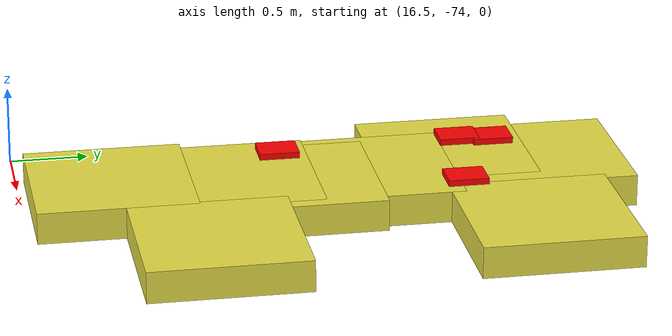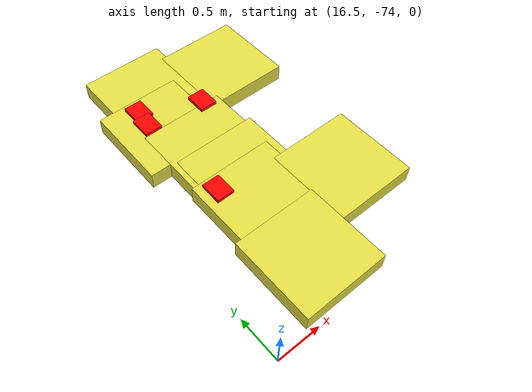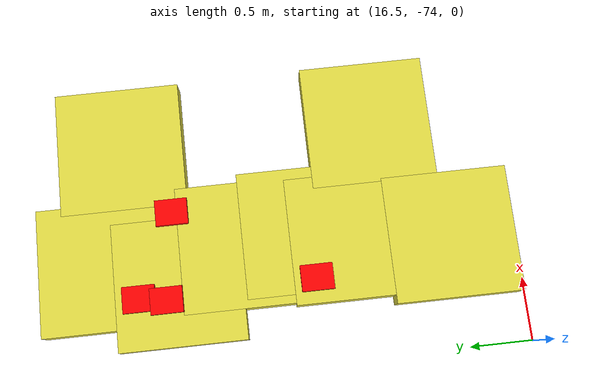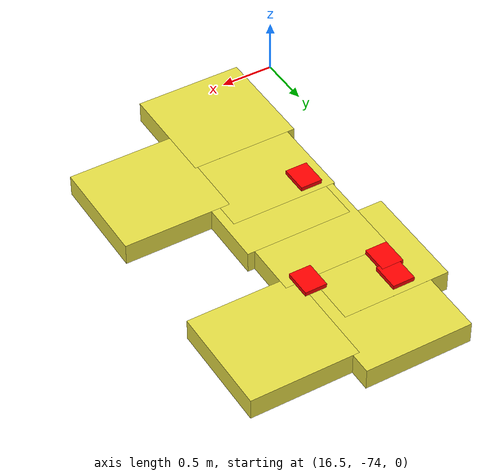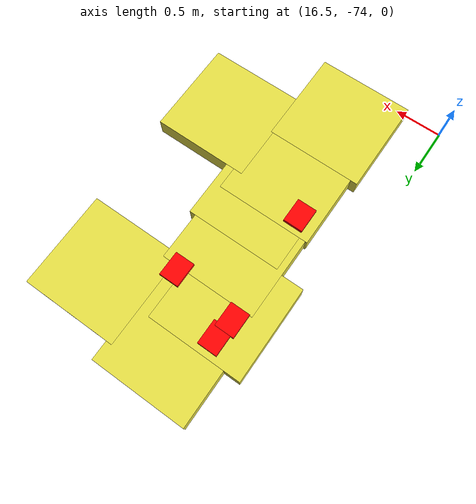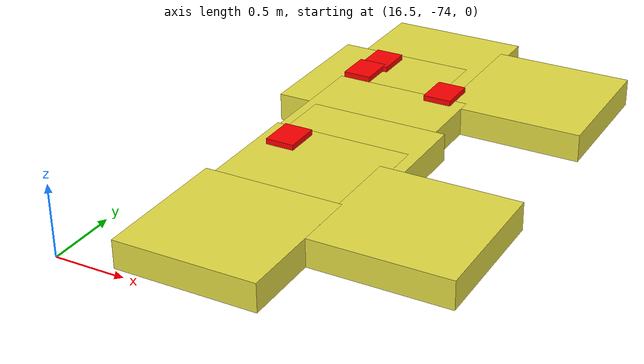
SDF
<sdf version="1.4">
 <world name="default">
  <include><uri>model://sun</uri></include>
  <model name="fire_box_2_clone_7">
   <link name="link">
    <inertial>
     <mass>1</mass>
     <inertia>
      <ixx>0.166667</ixx>
      <ixy>0</ixy>
      <ixz>0</ixz>
      <iyy>0.166667</iyy>
      <iyz>0</iyz>
      <izz>0.166667</izz>
     </inertia>
    </inertial>
    <visual name="visual">
     <geometry><box><size>1 1 0.2</size></box></geometry>
     <material>
      <script><name>Gazebo/Grey</name><uri>file://media/materials/scripts/gazebo.material</uri></script>
      <ambient>0.9 0.87 0.27 1</ambient>
      <diffuse>0.9 0.87 0.27 1</diffuse>
      <specular>0.01 0.01 0.01 1</specular>
      <emissive>0 0 0 1</emissive>
      <shader type="vertex"><normal_map>__default__</normal_map></shader>
      <lighting>1</lighting>
     </material>
    </visual>
   </link>
   <static>1</static>
   <pose>17.5456 -72.2979 0.103208 2e-05 -0 5.1e-05</pose>
  </model>
  <model name="fire_box_2_clone_8">
   <link name="link">
    <inertial>
     <mass>1</mass>
     <inertia>
      <ixx>0.166667</ixx>
      <ixy>0</ixy>
      <ixz>0</ixz>
      <iyy>0.166667</iyy>
      <iyz>0</iyz>
      <izz>0.166667</izz>
     </inertia>
    </inertial>
    <visual name="visual">
     <geometry><box><size>1 1 0.2</size></box></geometry>
     <material>
      <script><name>Gazebo/Grey</name><uri>file://media/materials/scripts/gazebo.material</uri></script>
      <ambient>0.9 0.87 0.27 1</ambient>
      <diffuse>0.9 0.87 0.27 1</diffuse>
      <specular>0.01 0.01 0.01 1</specular>
      <emissive>0 0 0 1</emissive>
      <shader type="vertex"><normal_map>__default__</normal_map></shader>
      <lighting>1</lighting>
     </material>
    </visual>
   </link>
   <static>1</static>
   <pose>18.3683 -72.9005 0.103208 2e-05 -0 5.1e-05</pose>
  </model>
  <model name="fire_box_2_clone_9">
   <link name="link">
    <inertial>
     <mass>1</mass>
     <inertia>
      <ixx>0.166667</ixx>
      <ixy>0</ixy>
      <ixz>0</ixz>
      <iyy>0.166667</iyy>
      <iyz>0</iyz>
      <izz>0.166667</izz>
     </inertia>
    </inertial>
    <visual name="visual">
     <geometry><box><size>1 1 0.2</size></box></geometry>
     <material>
      <script><name>Gazebo/Grey</name><uri>file://media/materials/scripts/gazebo.material</uri></script>
      <ambient>0.9 0.87 0.27 1</ambient>
      <diffuse>0.9 0.87 0.27 1</diffuse>
      <specular>0.01 0.01 0.01 1</specular>
      <emissive>0 0 0 1</emissive>
      <shader type="vertex"><normal_map>__default__</normal_map></shader>
      <lighting>1</lighting>
     </material>
    </visual>
   </link>
   <static>1</static>
   <pose>17.3911 -73.4467 0.103208 2e-05 -0 5.1e-05</pose>
  </model>
  <model name="fire_box_2_clone_13">
   <link name="link">
    <inertial>
     <mass>1</mass>
     <inertia>
      <ixx>0.166667</ixx>
      <ixy>0</ixy>
      <ixz>0</ixz>
      <iyy>0.166667</iyy>
      <iyz>0</iyz>
      <izz>0.166667</izz>
     </inertia>
    </inertial>
    <visual name="visual">
     <geometry><box><size>1 1 0.2</size></box></geometry>
     <material>
      <script><name>Gazebo/Grey</name><uri>file://media/materials/scripts/gazebo.material</uri></script>
      <ambient>0.9 0.87 0.27 1</ambient>
      <diffuse>0.9 0.87 0.27 1</diffuse>
      <specular>0.01 0.01 0.01 1</specular>
      <emissive>0 0 0 1</emissive>
      <shader type="vertex"><normal_map>__default__</normal_map></shader>
      <lighting>1</lighting>
     </material>
    </visual>
   </link>
   <static>1</static>
   <pose>17.4603 -72.6708 0.103208 2e-05 -0 5.1e-05</pose>
  </model>
  <model name="fire_box_2_clone_14">
   <link name="link">
    <inertial>
     <mass>1</mass>
     <inertia>
      <ixx>0.166667</ixx>
      <ixy>0</ixy>
      <ixz>0</ixz>
      <iyy>0.166667</iyy>
      <iyz>0</iyz>
      <izz>0.166667</izz>
     </inertia>
    </inertial>
    <visual name="visual">
     <geometry><box><size>1 1 0.2</size></box></geometry>
     <material>
      <script><name>Gazebo/Grey</name><uri>file://media/materials/scripts/gazebo.material</uri></script>
      <ambient>0.9 0.87 0.27 1</ambient>
      <diffuse>0.9 0.87 0.27 1</diffuse>
      <specular>0.01 0.01 0.01 1</specular>
      <emissive>0 0 0 1</emissive>
      <shader type="vertex"><normal_map>__default__</normal_map></shader>
      <lighting>1</lighting>
     </material>
    </visual>
   </link>
   <static>1</static>
   <pose>17.2442 -71.2753 0.103208 2e-05 -0 5.1e-05</pose>
  </model>
  <model name="fire_box_2_clone_17">
   <link name="link">
    <inertial>
     <mass>1</mass>
     <inertia>
      <ixx>0.166667</ixx>
      <ixy>0</ixy>
      <ixz>0</ixz>
      <iyy>0.166667</iyy>
      <iyz>0</iyz>
      <izz>0.166667</izz>
     </inertia>
    </inertial>
    <visual name="visual">
     <geometry><box><size>1 1 0.2</size></box></geometry>
     <material>
      <script><name>Gazebo/Grey</name><uri>file://media/materials/scripts/gazebo.material</uri></script>
      <ambient>0.9 0.87 0.27 1</ambient>
      <diffuse>0.9 0.87 0.27 1</diffuse>
      <specular>0.01 0.01 0.01 1</specular>
      <emissive>0 0 0 1</emissive>
      <shader type="vertex"><normal_map>__default__</normal_map></shader>
      <lighting>1</lighting>
     </material>
    </visual>
   </link>
   <static>1</static>
   <pose>17.4797 -71.8 0.103208 2e-05 -0 5.1e-05</pose>
  </model>
  <model name="fire_box_2_clone_18">
   <link name="link">
    <inertial>
     <mass>1</mass>
     <inertia>
      <ixx>0.166667</ixx>
      <ixy>0</ixy>
      <ixz>0</ixz>
      <iyy>0.166667</iyy>
      <iyz>0</iyz>
      <izz>0.166667</izz>
     </inertia>
    </inertial>
    <visual name="visual">
     <geometry><box><size>1 1 0.2</size></box></geometry>
     <material>
      <script><name>Gazebo/Grey</name><uri>file://media/materials/scripts/gazebo.material</uri></script>
      <ambient>0.9 0.87 0.27 1</ambient>
      <diffuse>0.9 0.87 0.27 1</diffuse>
      <specular>0.01 0.01 0.01 1</specular>
      <emissive>0 0 0 1</emissive>
      <shader type="vertex"><normal_map>__default__</normal_map></shader>
      <lighting>1</lighting>
     </material>
    </visual>
   </link>
   <static>1</static>
   <pose>17.4152 -70.6947 0.103208 2e-05 -0 5.1e-05</pose>
  </model>
  <model name="fire_box_2_clone_20">
   <link name="link">
    <inertial>
     <mass>1</mass>
     <inertia>
      <ixx>0.166667</ixx>
      <ixy>0</ixy>
      <ixz>0</ixz>
      <iyy>0.166667</iyy>
      <iyz>0</iyz>
      <izz>0.166667</izz>
     </inertia>
    </inertial>
    <visual name="visual">
     <geometry><box><size>1 1 0.2</size></box></geometry>
     <material>
      <script><name>Gazebo/Grey</name><uri>file://media/materials/scripts/gazebo.material</uri></script>
      <ambient>0.9 0.87 0.27 1</ambient>
      <diffuse>0.9 0.87 0.27 1</diffuse>
      <specular>0.01 0.01 0.01 1</specular>
      <emissive>0 0 0 1</emissive>
      <shader type="vertex"><normal_map>__default__</normal_map></shader>
      <lighting>1</lighting>
     </material>
    </visual>
   </link>
   <static>1</static>
   <pose>18.3543 -70.8926 0.103208 2e-05 -0 5.1e-05</pose>
  </model>
  <model name="fire_box_clone_10_clone_clone">
   <link name="link">
    <inertial>
     <mass>1</mass>
     <inertia>
      <ixx>0.166667</ixx>
      <ixy>0</ixy>
      <ixz>0</ixz>
      <iyy>0.166667</iyy>
      <iyz>0</iyz>
      <izz>0.166667</izz>
     </inertia>
    </inertial>
    <visual name="visual">
     <geometry><box><size>0.205115 0.254942 0.2</size></box></geometry>
     <material>
      <script><name>Gazebo/Grey</name><uri>file://media/materials/scripts/gazebo.material</uri></script>
      <ambient>1 0 0 1</ambient>
      <diffuse>1 0 0 1</diffuse>
      <specular>0.01 0.01 0.01 1</specular>
      <emissive>0 0 0 1</emissive>
      <shader type="vertex"><normal_map>__default__</normal_map></shader>
      <lighting>1</lighting>
     </material>
    </visual>
   </link>
   <static>1</static>
   <pose>17.7918 -71.2662 0.142519 2e-05 -0 5.1e-05</pose>
  </model>
  <model name="fire_box_clone_10_clone_clone_1">
   <link name="link">
    <inertial>
     <mass>1</mass>
     <inertia>
      <ixx>0.166667</ixx>
      <ixy>0</ixy>
      <ixz>0</ixz>
      <iyy>0.166667</iyy>
      <iyz>0</iyz>
      <izz>0.166667</izz>
     </inertia>
    </inertial>
    <visual name="visual">
     <geometry><box><size>0.205115 0.254942 0.2</size></box></geometry>
     <material>
      <script><name>Gazebo/Grey</name><uri>file://media/materials/scripts/gazebo.material</uri></script>
      <ambient>1 0 0 1</ambient>
      <diffuse>1 0 0 1</diffuse>
      <specular>0.01 0.01 0.01 1</specular>
      <emissive>0 0 0 1</emissive>
      <shader type="vertex"><normal_map>__default__</normal_map></shader>
      <lighting>1</lighting>
     </material>
    </visual>
   </link>
   <static>1</static>
   <pose>17.107 -71.1758 0.142519 2e-05 -0 5.1e-05</pose>
  </model>
  <model name="fire_box_clone_10_clone_clone_3">
   <link name="link">
    <inertial>
     <mass>1</mass>
     <inertia>
      <ixx>0.166667</ixx>
      <ixy>0</ixy>
      <ixz>0</ixz>
      <iyy>0.166667</iyy>
      <iyz>0</iyz>
      <izz>0.166667</izz>
     </inertia>
    </inertial>
    <visual name="visual">
     <geometry><box><size>0.205115 0.254942 0.2</size></box></geometry>
     <material>
      <script><name>Gazebo/Grey</name><uri>file://media/materials/scripts/gazebo.material</uri></script>
      <ambient>1 0 0 1</ambient>
      <diffuse>1 0 0 1</diffuse>
      <specular>0.01 0.01 0.01 1</specular>
      <emissive>0 0 0 1</emissive>
      <shader type="vertex"><normal_map>__default__</normal_map></shader>
      <lighting>1</lighting>
     </material>
    </visual>
   </link>
   <static>1</static>
   <pose>17.139 -70.9635 0.142519 2e-05 -0 5.1e-05</pose>
  </model>
  <model name="fire_box_clone_10_clone_clone_13">
   <link name="link">
    <inertial>
     <mass>1</mass>
     <inertia>
      <ixx>0.166667</ixx>
      <ixy>0</ixy>
      <ixz>0</ixz>
      <iyy>0.166667</iyy>
      <iyz>0</iyz>
      <izz>0.166667</izz>
     </inertia>
    </inertial>
    <visual name="visual">
     <geometry><box><size>0.205115 0.254942 0.2</size></box></geometry>
     <material>
      <script><name>Gazebo/Grey</name><uri>file://media/materials/scripts/gazebo.material</uri></script>
      <ambient>1 0 0 1</ambient>
      <diffuse>1 0 0 1</diffuse>
      <specular>0.01 0.01 0.01 1</specular>
      <emissive>0 0 0 1</emissive>
      <shader type="vertex"><normal_map>__default__</normal_map></shader>
      <lighting>1</lighting>
     </material>
    </visual>
   </link>
   <static>1</static>
   <pose>17.1594 -72.351 0.142519 2e-05 -0 5.1e-05</pose>
  </model>
 </world>
</sdf>
